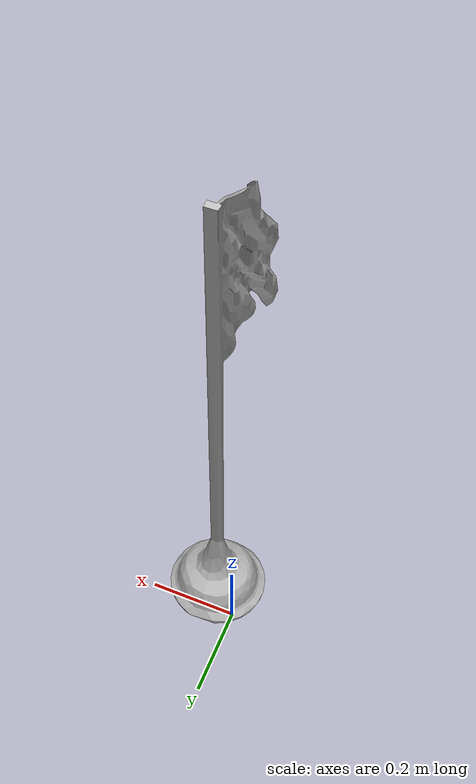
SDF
<?xml version='1.0'?>
<sdf version="1.5">
  <model name="flag"> <!-- Very important to change-->
    <static>true</static>
    <pose>0 0 0 0 0 0</pose> <!-- Translation: X Y Z and Rotation: Roll Pitch Yaw (In Radian)-->
    <link name="body">

    <inertial> >
    <mass>0.301</mass>
    <pose>-0.003 -0.024 118.081 0 0 0</pose>
      <inertia>
        <ixx>0.003</ixx>
        <ixy>4.33e-8</ixy>
        <ixz>-3.65e-8</ixz>
        <iyy>0.003</iyy>
        <iyz>-2.57e-7</iyz>
        <izz>3.88e-4</izz>
      </inertia>
    </inertial>

      <visual name="visual">
        <geometry>
          <mesh>
             <uri>/home/sorox23/robotic_ws/master_thesis_ws/src/property_based_tester/environment/models/flag/meshes/flag.dae</uri>
            <scale>0.01 0.01 0.01</scale>
          </mesh>
        </geometry>
      </visual>
    </link>
  </model>
</sdf>
